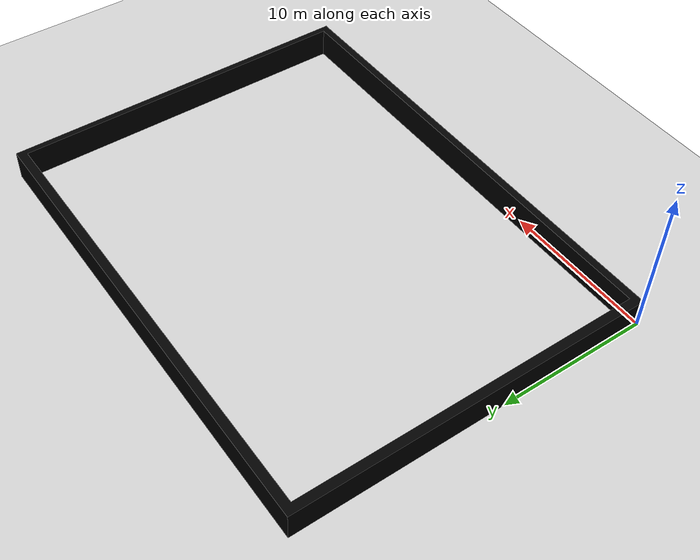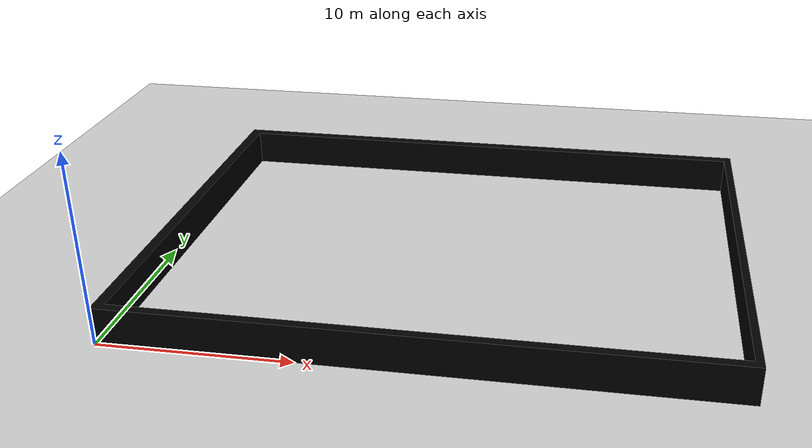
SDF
<?xml version='1.0' encoding='UTF-8'?>
<sdf version="1.4">
  <world name="default">

    <include>
      <uri>model://ground_plane</uri>
    </include>
    <include>
      <uri>model://sun</uri>
    </include>

    <scene>
      <ambient>0.0 0.0 0.0 1.0</ambient>
      <shadows>0</shadows>
      <grid>false</grid>
      <origin_visual>false</origin_visual>
    </scene>

    <gui fullscreen='0'>
      <camera name='gui_camera'>
        <pose>13.592713 12.217493 42.511192 -0.000122 1.565795 -1.571874</pose>
        <view_controller>orbit</view_controller>
        <projection_type>perspective</projection_type>
      </camera>
    </gui>

    <model name="my_mesh">
      <static>true</static>
      <link name="body">
        <visual name="visual">
          <pose frame="">0.0 0.0 1 0 0 0</pose>
          <geometry>
            <mesh>
              <uri>//map.dae</uri>
            </mesh>
          </geometry>
        </visual>
        <collision name="collision1">
          <pose frame="">0.0 0.0 1 0 0 0</pose>
          <geometry>
            <mesh>
              <uri>//map.dae</uri>
            </mesh>
          </geometry>
        </collision>
      </link>
    </model>

  </world>
</sdf>
